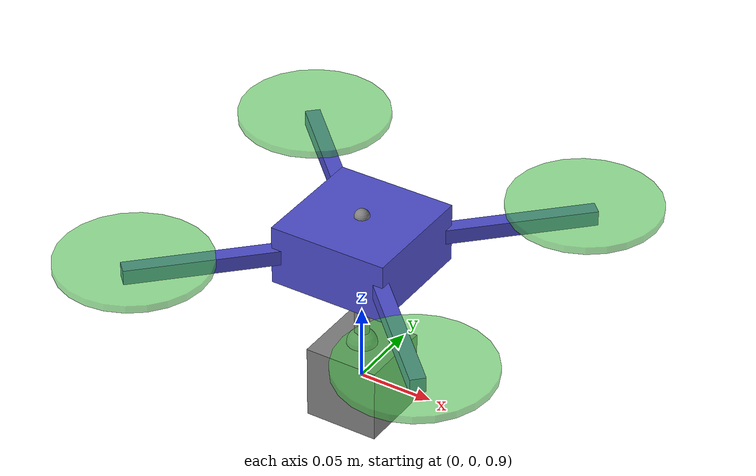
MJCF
<mujoco model="Generic Quad">
    <compiler autolimits="true"/>
    <option integrator="RK4" density="1.2" viscosity="0.00002"/>
    <visual>
      <headlight diffuse="0.6 0.6 0.6" ambient="0.3 0.3 0.3" specular="0 0 0"/>
      <global azimuth="-20" elevation="-20" offwidth="1920" offheight="1080"/>
    </visual>
    <asset>
      <texture name="skybox" type="skybox" builtin="gradient" rgb1=".4 .6 .8" rgb2="0 0 0" width="800" height="800"
        mark="random" markrgb="1 1 1"/>
      <texture type="2d" name="groundplane" builtin="checker" mark="edge" rgb1="0.2 0.3 0.4" rgb2="0.1 0.2 0.3"
        markrgb="0.8 0.8 0.8" width="300" height="300"/>
      <material name="groundplane" texture="groundplane" texuniform="true" texrepeat="5 5" reflectance="0.2"/>
    </asset>

    <worldbody>
      <light pos="0 0 20" dir="0 0 -1" directional="false"/>
      <geom name="floor" size="0 0 0.05" type="plane" material="groundplane"/>
      <body name="quad" pos="0 0 1" quat="1 0 0 0">
        <inertial mass="0.792" diaginertia="0.0047 0.005 0.0074" pos="0 0 0"/>
        <joint name="root" type="free" damping="0" armature="0" pos="0 0 0" limited="false"/>

        <geom name="quad_geom" type="box" pos="0 0 0" quat="1 0 0 0" size=".04 .04 .02" rgba=".3 .3 .8 1"/>

        <geom name="arm_front_left" type="box" pos=".07 .07 0" size=".05 .005 .005" quat=".924 0 0 .383" rgba=".3 .3 .8 1"/>
        <geom name="arm_front_right" type="box" pos=".07 -.07 0" size=".05 .005 .005" quat=".383 0 0 .924"
          rgba=".3 .3 .8 1"/>
        <geom name="arm_back_right" type="box" pos="-.07 -.07 0" size=".05 .005 .005" quat="-.383 0 0 .924"
          rgba=".3 .3 .8 1"/>
        <geom name="arm_back_left" type="box" pos="-.07 .07 0" size=".05 .005 .005" quat=".924 0 0 -.383"
          rgba=".3 .3 .8 1"/>

        <site name="thrust_com" type="cylinder" pos="0 0 0" quat="1 0 0 0"/>
        <site name="imu" pos="0 0 .02"/>

        <geom name="thruster_front_left" type="cylinder" pos=".1 .1 .0075" size=".05 .0025" quat="1 0 0 0"
          rgba=".3 .8 .3 0.6"/>
        <geom name="thruster_front_right" type="cylinder" pos=".1 -.1 .0075" size=".05 .0025" quat="1 0 0 0"
          rgba=".3 .8 .3 0.6"/>
        <geom name="thruster_back_right" type="cylinder" pos="-.1 -.1 .0075" size=".05 .0025" quat="1 0 0 0"
          rgba=".3 .8 .3 0.6"/>
        <geom name="thruster_back_left" type="cylinder" pos="-.1 .1 .0075" size=".05 .0025" quat="1 0 0 0"
          rgba=".3 .8 .3 0.6"/>

        <camera name="visual" pos="0 0 -0.05" euler="90 -90 0" mode="fixed"/>
        <site name="end1" pos="0 0 -0.02" size="0.01"/>
      </body>
      <body pos="0.0 0.0 0.9">
      <inertial mass="0.150" diaginertia="0.000010417 0.000010417 0.000010417" pos="0 0 0"/>
        <joint type="free"/>
        <geom size="0.025 0.025 0.025" type="box"/>
        <site name="end2" pos="0 0 0.025" size="0.01"/>
      </body>
      <camera name="fixed" pos="1.408 1.648 1.415" xyaxes="-0.760 0.649 0.000 -0.337 -0.394 0.855" resolution="1920 1080"
        mode="fixed"/>
      <camera name="trackcom" pos="-2.178 1.182 1.601" xyaxes="-0.477 -0.879 -0.000 0.364 -0.198 0.910"
        resolution="1920 1080" mode="trackcom"/>

    </worldbody>

    <actuator>
      <motor gear="0 0 1 0 0 0" site="thrust_com" name="body_thrust" ctrlrange="0 10"/>
      <motor gear="0 0 0 -1 0 0" site="thrust_com" name="x_moment"/>
      <motor gear="0 0 0 0 -1 0" site="thrust_com" name="y_moment"/>
      <motor gear="0 0 0 0 0 -1" site="thrust_com" name="z_moment"/>
    </actuator>

    <sensor>
      <gyro name="body_gyro" site="imu"/>
      <accelerometer name="body_accl" site="imu"/>
      <framequat name="body_quat" objtype="site" objname="imu"/>
    </sensor>
    <tendon>
      <spatial limited="true" range="0 0.75" width="0.005">
        <site site="end1"/>
        <site site="end2"/>
      </spatial>
    </tendon>

  </mujoco>
